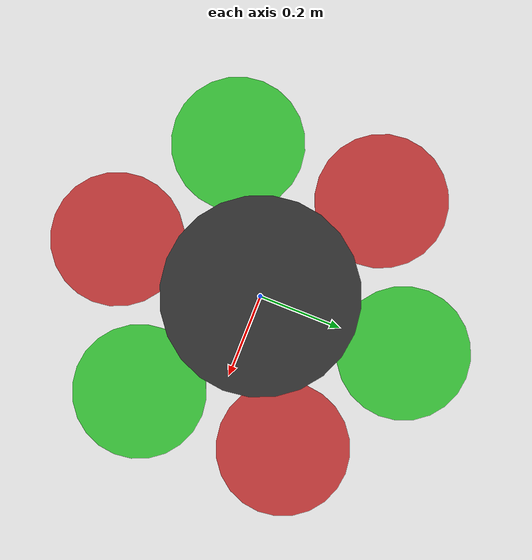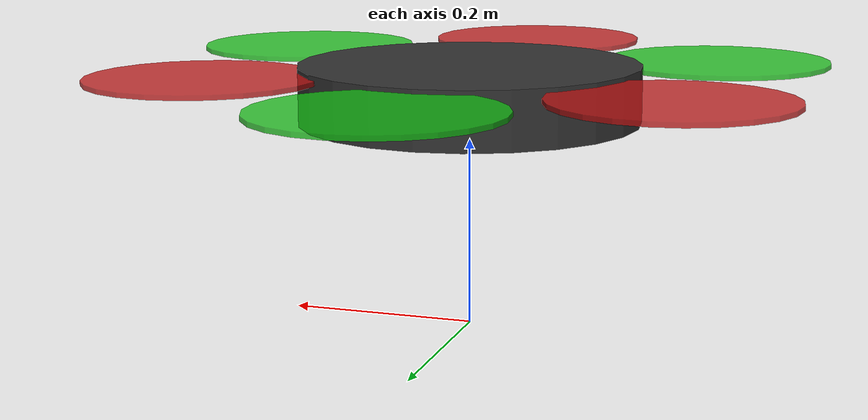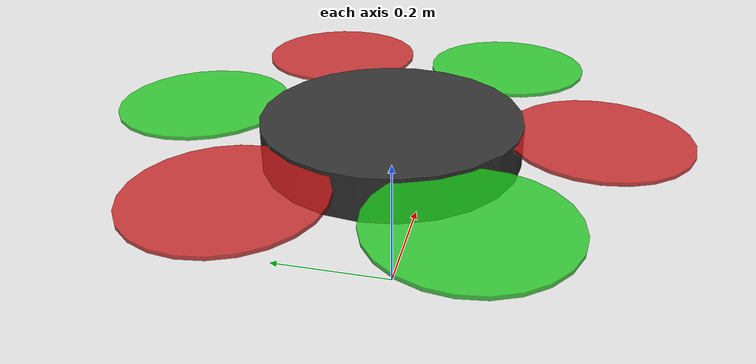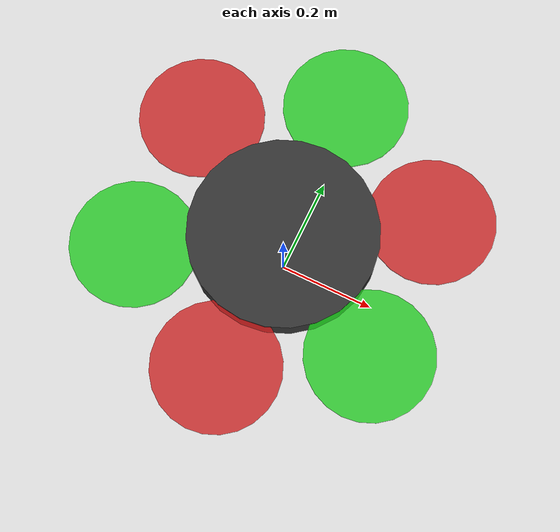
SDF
<?xml version="1.0"?>
<sdf version="1.9">
  <model name="hexacopter">
    <pose>0 0 0.25 0 0 0</pose>

    <!-- ═══════════════════════════ BASE LINK ═══════════════════════════ -->
    <link name="base_link">
      <inertial>
        <mass>2.5</mass>
        <inertia>
          <ixx>0.025204</ixx>
          <iyy>0.025204</iyy>
          <izz>0.049508</izz>
          <ixy>0</ixy><ixz>0</ixz><iyz>0</iyz>
        </inertia>
      </inertial>

      <!-- Frame (thin disc approximation) -->
      <visual name="body_visual">
        <geometry>
          <cylinder><radius>0.18</radius><length>0.06</length></cylinder>
        </geometry>
        <material>
          <ambient>0.1 0.1 0.1 1</ambient>
          <diffuse>0.2 0.2 0.2 1</diffuse>
        </material>
      </visual>
      <collision name="body_collision">
        <geometry>
          <cylinder><radius>0.18</radius><length>0.06</length></cylinder>
        </geometry>
      </collision>

      <!-- ─────────────── OAK-D Pro (front, -15° pitch) ─────────────── -->
      <!--
        Mounted at the nose of the frame, tilted 15° downward so the camera
        sees the ground ahead during forward flight — good for obstacle
        detection at low altitude.
      -->
      <sensor name="oakd_rgb" type="camera">
        <pose>0.12 0 0.02 0 0.26 0</pose>  <!-- 0.26 rad ≈ 15° pitch down -->
        <camera>
          <horizontal_fov>1.2043</horizontal_fov>  <!-- 69° — OAK-D Pro spec -->
          <image>
            <width>1920</width>
            <height>1080</height>
            <format>R8G8B8</format>
          </image>
          <clip><near>0.1</near><far>35.0</far></clip>
        </camera>
        <update_rate>30</update_rate>
        <always_on>true</always_on>
        <visualize>false</visualize>
        <topic>/hexacopter/oakd/rgb/image_raw</topic>
      </sensor>

      <sensor name="oakd_depth" type="depth_camera">
        <pose>0.12 0.035 0.02 0 0.26 0</pose>  <!-- slight offset (stereo baseline ~7.5cm) -->
        <camera>
          <horizontal_fov>1.2043</horizontal_fov>
          <image>
            <width>640</width>
            <height>400</height>
            <format>R_FLOAT32</format>
          </image>
          <clip><near>0.4</near><far>15.0</far></clip>  <!-- OAK-D Pro depth range -->
        </camera>
        <update_rate>30</update_rate>
        <always_on>true</always_on>
        <visualize>false</visualize>
        <topic>/hexacopter/oakd/depth/image_raw</topic>
      </sensor>

      <!-- ─────────── Velodyne Puck Lite (VLP-16, downward) ─────────── -->
      <sensor name="velodyne_puck_lite" type="gpu_lidar">
        <pose>0 0 -0.05 3.14159 0 0</pose>  <!-- pointing down -->
        <lidar>
          <scan>
            <horizontal>
              <samples>1800</samples>       <!-- 0.2° angular resolution -->
              <resolution>1</resolution>
              <min_angle>-3.14159</min_angle>
              <max_angle>3.14159</max_angle>
            </horizontal>
            <vertical>
              <samples>16</samples>          <!-- VLP-16 channels -->
              <resolution>1</resolution>
              <min_angle>-0.2618</min_angle>
              <max_angle>0.2618</max_angle>
            </vertical>
          </scan>
          <range>
            <min>0.1</min>
            <max>100.0</max>
            <resolution>0.01</resolution>
          </range>
          <noise>
            <type>gaussian</type>
            <mean>0.0</mean>
            <stddev>0.01</stddev>
          </noise>
        </lidar>
        <update_rate>10</update_rate>
        <always_on>true</always_on>
        <visualize>false</visualize>
        <topic>/hexacopter/lidar/points</topic>
      </sensor>

      <!-- ──────────────────── IMU (PX4 SITL) ──────────────────────── -->
      <sensor name="imu" type="imu">
        <pose>0 0 0 0 0 0</pose>
        <imu>
          <angular_velocity>
            <x><noise type="gaussian"><mean>0</mean><stddev>0.009</stddev></noise></x>
            <y><noise type="gaussian"><mean>0</mean><stddev>0.009</stddev></noise></y>
            <z><noise type="gaussian"><mean>0</mean><stddev>0.009</stddev></noise></z>
          </angular_velocity>
          <linear_acceleration>
            <x><noise type="gaussian"><mean>0</mean><stddev>0.021</stddev></noise></x>
            <y><noise type="gaussian"><mean>0</mean><stddev>0.021</stddev></noise></y>
            <z><noise type="gaussian"><mean>0</mean><stddev>0.021</stddev></noise></z>
          </linear_acceleration>
        </imu>
        <update_rate>250</update_rate>
        <always_on>true</always_on>
        <topic>/hexacopter/imu</topic>
      </sensor>
    </link>

    <!-- ══════════════════════════ ROTORS ══════════════════════════════ -->

    <!-- Motor 1 — front-right, CW -->
    <link name="rotor_1">
      <pose>0.238 -0.138 0.023 0 0 0</pose>
      <inertial><mass>0.025</mass><inertia><ixx>9.75e-7</ixx><iyy>1.66704e-4</iyy><izz>1.66704e-4</izz><ixy>0</ixy><ixz>0</ixz><iyz>0</iyz></inertia></inertial>
      <visual name="rotor_1_visual"><geometry><cylinder><radius>0.12</radius><length>0.005</length></cylinder></geometry><material><ambient>0.1 0.5 0.1 0.8</ambient><diffuse>0.1 0.8 0.1 0.8</diffuse></material></visual>
      <collision name="rotor_1_collision"><geometry><cylinder><radius>0.12</radius><length>0.005</length></cylinder></geometry></collision>
    </link>
    <joint name="rotor_1_joint" type="revolute">
      <parent>base_link</parent><child>rotor_1</child>
      <axis><xyz>0 0 1</xyz><limit><lower>-1e+16</lower><upper>1e+16</upper></limit><dynamics><damping>0.004</damping></dynamics></axis>
    </joint>

    <!-- Motor 2 — right, CCW -->
    <link name="rotor_2">
      <pose>0 -0.275 0.023 0 0 0</pose>
      <inertial><mass>0.025</mass><inertia><ixx>9.75e-7</ixx><iyy>1.66704e-4</iyy><izz>1.66704e-4</izz><ixy>0</ixy><ixz>0</ixz><iyz>0</iyz></inertia></inertial>
      <visual name="rotor_2_visual"><geometry><cylinder><radius>0.12</radius><length>0.005</length></cylinder></geometry><material><ambient>0.5 0.1 0.1 0.8</ambient><diffuse>0.8 0.1 0.1 0.8</diffuse></material></visual>
      <collision name="rotor_2_collision"><geometry><cylinder><radius>0.12</radius><length>0.005</length></cylinder></geometry></collision>
    </link>
    <joint name="rotor_2_joint" type="revolute">
      <parent>base_link</parent><child>rotor_2</child>
      <axis><xyz>0 0 -1</xyz><limit><lower>-1e+16</lower><upper>1e+16</upper></limit><dynamics><damping>0.004</damping></dynamics></axis>
    </joint>

    <!-- Motor 3 — rear-right, CW -->
    <link name="rotor_3">
      <pose>-0.238 -0.138 0.023 0 0 0</pose>
      <inertial><mass>0.025</mass><inertia><ixx>9.75e-7</ixx><iyy>1.66704e-4</iyy><izz>1.66704e-4</izz><ixy>0</ixy><ixz>0</ixz><iyz>0</iyz></inertia></inertial>
      <visual name="rotor_3_visual"><geometry><cylinder><radius>0.12</radius><length>0.005</length></cylinder></geometry><material><ambient>0.1 0.5 0.1 0.8</ambient><diffuse>0.1 0.8 0.1 0.8</diffuse></material></visual>
      <collision name="rotor_3_collision"><geometry><cylinder><radius>0.12</radius><length>0.005</length></cylinder></geometry></collision>
    </link>
    <joint name="rotor_3_joint" type="revolute">
      <parent>base_link</parent><child>rotor_3</child>
      <axis><xyz>0 0 1</xyz><limit><lower>-1e+16</lower><upper>1e+16</upper></limit><dynamics><damping>0.004</damping></dynamics></axis>
    </joint>

    <!-- Motor 4 — rear-left, CCW -->
    <link name="rotor_4">
      <pose>-0.238 0.138 0.023 0 0 0</pose>
      <inertial><mass>0.025</mass><inertia><ixx>9.75e-7</ixx><iyy>1.66704e-4</iyy><izz>1.66704e-4</izz><ixy>0</ixy><ixz>0</ixz><iyz>0</iyz></inertia></inertial>
      <visual name="rotor_4_visual"><geometry><cylinder><radius>0.12</radius><length>0.005</length></cylinder></geometry><material><ambient>0.5 0.1 0.1 0.8</ambient><diffuse>0.8 0.1 0.1 0.8</diffuse></material></visual>
      <collision name="rotor_4_collision"><geometry><cylinder><radius>0.12</radius><length>0.005</length></cylinder></geometry></collision>
    </link>
    <joint name="rotor_4_joint" type="revolute">
      <parent>base_link</parent><child>rotor_4</child>
      <axis><xyz>0 0 -1</xyz><limit><lower>-1e+16</lower><upper>1e+16</upper></limit><dynamics><damping>0.004</damping></dynamics></axis>
    </joint>

    <!-- Motor 5 — left, CW -->
    <link name="rotor_5">
      <pose>0 0.275 0.023 0 0 0</pose>
      <inertial><mass>0.025</mass><inertia><ixx>9.75e-7</ixx><iyy>1.66704e-4</iyy><izz>1.66704e-4</izz><ixy>0</ixy><ixz>0</ixz><iyz>0</iyz></inertia></inertial>
      <visual name="rotor_5_visual"><geometry><cylinder><radius>0.12</radius><length>0.005</length></cylinder></geometry><material><ambient>0.1 0.5 0.1 0.8</ambient><diffuse>0.1 0.8 0.1 0.8</diffuse></material></visual>
      <collision name="rotor_5_collision"><geometry><cylinder><radius>0.12</radius><length>0.005</length></cylinder></geometry></collision>
    </link>
    <joint name="rotor_5_joint" type="revolute">
      <parent>base_link</parent><child>rotor_5</child>
      <axis><xyz>0 0 1</xyz><limit><lower>-1e+16</lower><upper>1e+16</upper></limit><dynamics><damping>0.004</damping></dynamics></axis>
    </joint>

    <!-- Motor 6 — front-left, CCW -->
    <link name="rotor_6">
      <pose>0.238 0.138 0.023 0 0 0</pose>
      <inertial><mass>0.025</mass><inertia><ixx>9.75e-7</ixx><iyy>1.66704e-4</iyy><izz>1.66704e-4</izz><ixy>0</ixy><ixz>0</ixz><iyz>0</iyz></inertia></inertial>
      <visual name="rotor_6_visual"><geometry><cylinder><radius>0.12</radius><length>0.005</length></cylinder></geometry><material><ambient>0.5 0.1 0.1 0.8</ambient><diffuse>0.8 0.1 0.1 0.8</diffuse></material></visual>
      <collision name="rotor_6_collision"><geometry><cylinder><radius>0.12</radius><length>0.005</length></cylinder></geometry></collision>
    </link>
    <joint name="rotor_6_joint" type="revolute">
      <parent>base_link</parent><child>rotor_6</child>
      <axis><xyz>0 0 -1</xyz><limit><lower>-1e+16</lower><upper>1e+16</upper></limit><dynamics><damping>0.004</damping></dynamics></axis>
    </joint>

    <!-- ═══════════════════ MULTICOPTER MOTOR PLUGIN ═══════════════════ -->
    <!--
      Gazebo Harmonic's MulticopterMotorModel plugin drives each rotor.
      motorNumber must match PX4 SITL mixer output order (1-indexed).
    -->
    <plugin filename="gz-sim-multicopter-motor-model-system"
            name="gz::sim::systems::MulticopterMotorModel">
      <robotNamespace>hexacopter</robotNamespace>
      <jointName>rotor_1_joint</jointName><linkName>rotor_1</linkName>
      <turningDirection>cw</turningDirection>
      <timeConstantUp>0.0125</timeConstantUp><timeConstantDown>0.025</timeConstantDown>
      <maxRotVelocity>1100</maxRotVelocity>
      <motorConstant>8.54858e-06</motorConstant>
      <momentConstant>0.016</momentConstant>
      <commandSubTopic>gazebo/command/motor_speed</commandSubTopic>
      <motorNumber>0</motorNumber>
      <rotorDragCoefficient>8.06428e-05</rotorDragCoefficient>
      <rollingMomentCoefficient>1e-06</rollingMomentCoefficient>
      <motorSpeedPubTopic>motor_speed/0</motorSpeedPubTopic>
      <rotorVelocitySlowdownSim>10</rotorVelocitySlowdownSim>
    </plugin>

    <plugin filename="gz-sim-multicopter-motor-model-system"
            name="gz::sim::systems::MulticopterMotorModel">
      <robotNamespace>hexacopter</robotNamespace>
      <jointName>rotor_2_joint</jointName><linkName>rotor_2</linkName>
      <turningDirection>ccw</turningDirection>
      <timeConstantUp>0.0125</timeConstantUp><timeConstantDown>0.025</timeConstantDown>
      <maxRotVelocity>1100</maxRotVelocity>
      <motorConstant>8.54858e-06</motorConstant>
      <momentConstant>0.016</momentConstant>
      <commandSubTopic>gazebo/command/motor_speed</commandSubTopic>
      <motorNumber>1</motorNumber>
      <rotorDragCoefficient>8.06428e-05</rotorDragCoefficient>
      <rollingMomentCoefficient>1e-06</rollingMomentCoefficient>
      <motorSpeedPubTopic>motor_speed/1</motorSpeedPubTopic>
      <rotorVelocitySlowdownSim>10</rotorVelocitySlowdownSim>
    </plugin>

    <plugin filename="gz-sim-multicopter-motor-model-system"
            name="gz::sim::systems::MulticopterMotorModel">
      <robotNamespace>hexacopter</robotNamespace>
      <jointName>rotor_3_joint</jointName><linkName>rotor_3</linkName>
      <turningDirection>cw</turningDirection>
      <timeConstantUp>0.0125</timeConstantUp><timeConstantDown>0.025</timeConstantDown>
      <maxRotVelocity>1100</maxRotVelocity>
      <motorConstant>8.54858e-06</motorConstant>
      <momentConstant>0.016</momentConstant>
      <commandSubTopic>gazebo/command/motor_speed</commandSubTopic>
      <motorNumber>2</motorNumber>
      <rotorDragCoefficient>8.06428e-05</rotorDragCoefficient>
      <rollingMomentCoefficient>1e-06</rollingMomentCoefficient>
      <motorSpeedPubTopic>motor_speed/2</motorSpeedPubTopic>
      <rotorVelocitySlowdownSim>10</rotorVelocitySlowdownSim>
    </plugin>

    <plugin filename="gz-sim-multicopter-motor-model-system"
            name="gz::sim::systems::MulticopterMotorModel">
      <robotNamespace>hexacopter</robotNamespace>
      <jointName>rotor_4_joint</jointName><linkName>rotor_4</linkName>
      <turningDirection>ccw</turningDirection>
      <timeConstantUp>0.0125</timeConstantUp><timeConstantDown>0.025</timeConstantDown>
      <maxRotVelocity>1100</maxRotVelocity>
      <motorConstant>8.54858e-06</motorConstant>
      <momentConstant>0.016</momentConstant>
      <commandSubTopic>gazebo/command/motor_speed</commandSubTopic>
      <motorNumber>3</motorNumber>
      <rotorDragCoefficient>8.06428e-05</rotorDragCoefficient>
      <rollingMomentCoefficient>1e-06</rollingMomentCoefficient>
      <motorSpeedPubTopic>motor_speed/3</motorSpeedPubTopic>
      <rotorVelocitySlowdownSim>10</rotorVelocitySlowdownSim>
    </plugin>

    <plugin filename="gz-sim-multicopter-motor-model-system"
            name="gz::sim::systems::MulticopterMotorModel">
      <robotNamespace>hexacopter</robotNamespace>
      <jointName>rotor_5_joint</jointName><linkName>rotor_5</linkName>
      <turningDirection>cw</turningDirection>
      <timeConstantUp>0.0125</timeConstantUp><timeConstantDown>0.025</timeConstantDown>
      <maxRotVelocity>1100</maxRotVelocity>
      <motorConstant>8.54858e-06</motorConstant>
      <momentConstant>0.016</momentConstant>
      <commandSubTopic>gazebo/command/motor_speed</commandSubTopic>
      <motorNumber>4</motorNumber>
      <rotorDragCoefficient>8.06428e-05</rotorDragCoefficient>
      <rollingMomentCoefficient>1e-06</rollingMomentCoefficient>
      <motorSpeedPubTopic>motor_speed/4</motorSpeedPubTopic>
      <rotorVelocitySlowdownSim>10</rotorVelocitySlowdownSim>
    </plugin>

    <plugin filename="gz-sim-multicopter-motor-model-system"
            name="gz::sim::systems::MulticopterMotorModel">
      <robotNamespace>hexacopter</robotNamespace>
      <jointName>rotor_6_joint</jointName><linkName>rotor_6</linkName>
      <turningDirection>ccw</turningDirection>
      <timeConstantUp>0.0125</timeConstantUp><timeConstantDown>0.025</timeConstantDown>
      <maxRotVelocity>1100</maxRotVelocity>
      <motorConstant>8.54858e-06</motorConstant>
      <momentConstant>0.016</momentConstant>
      <commandSubTopic>gazebo/command/motor_speed</commandSubTopic>
      <motorNumber>5</motorNumber>
      <rotorDragCoefficient>8.06428e-05</rotorDragCoefficient>
      <rollingMomentCoefficient>1e-06</rollingMomentCoefficient>
      <motorSpeedPubTopic>motor_speed/5</motorSpeedPubTopic>
      <rotorVelocitySlowdownSim>10</rotorVelocitySlowdownSim>
    </plugin>

    <!-- Odometry / ground truth pose for PX4 EKF -->
    <plugin filename="gz-sim-odometry-publisher-system"
            name="gz::sim::systems::OdometryPublisher">
      <odom_frame>odom</odom_frame>
      <robot_base_frame>base_link</robot_base_frame>
      <odom_publish_frequency>50</odom_publish_frequency>
      <topic>/hexacopter/odometry</topic>
    </plugin>

  </model>
</sdf>
